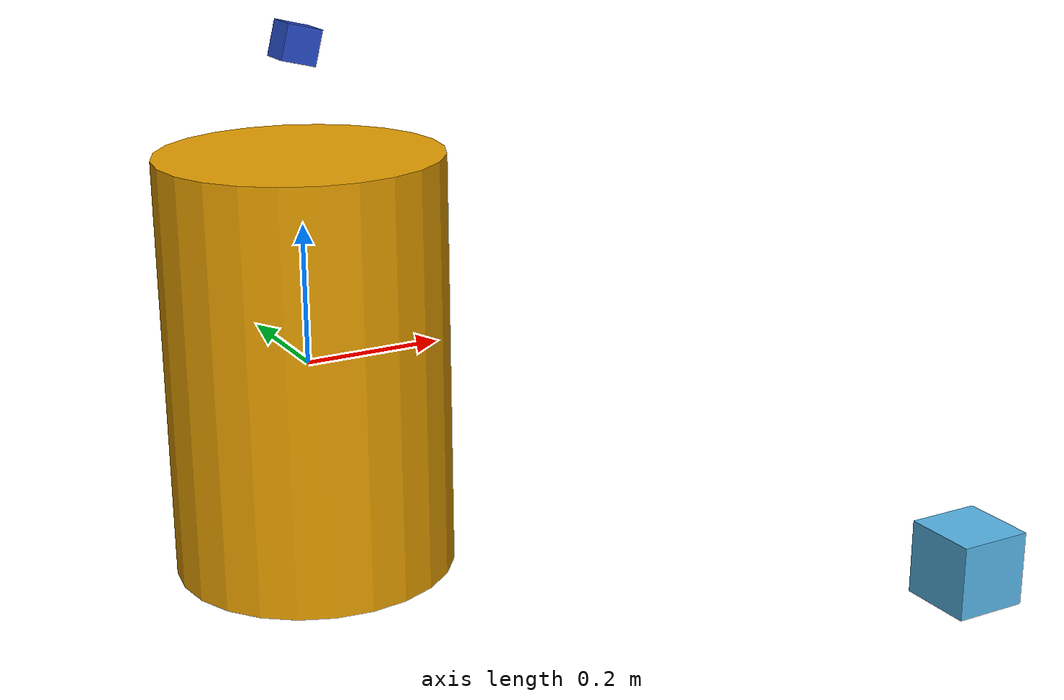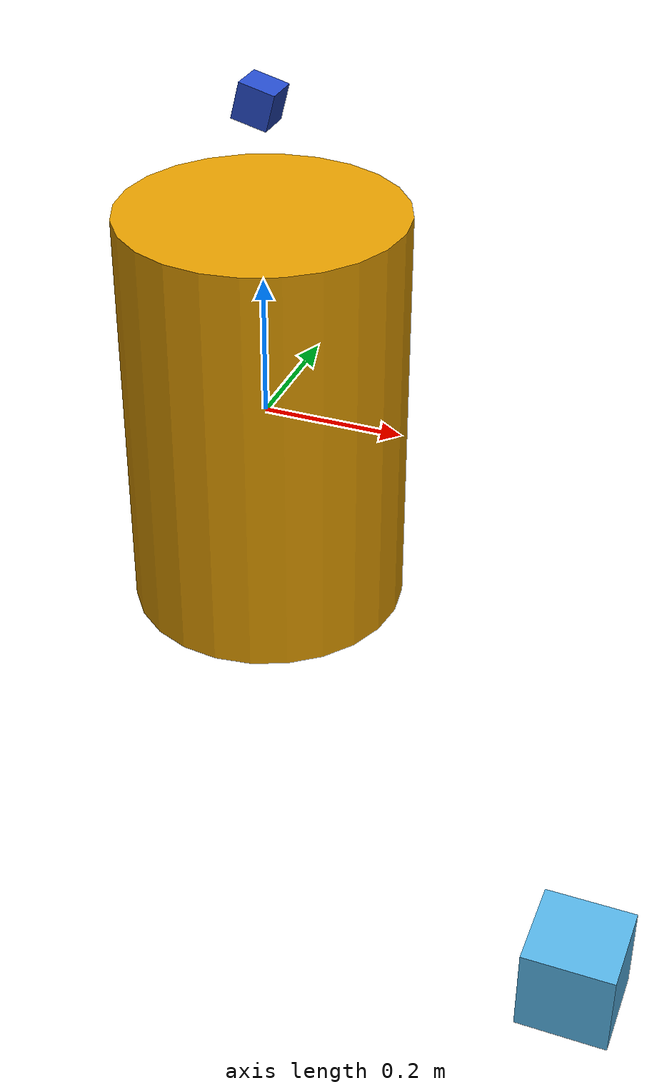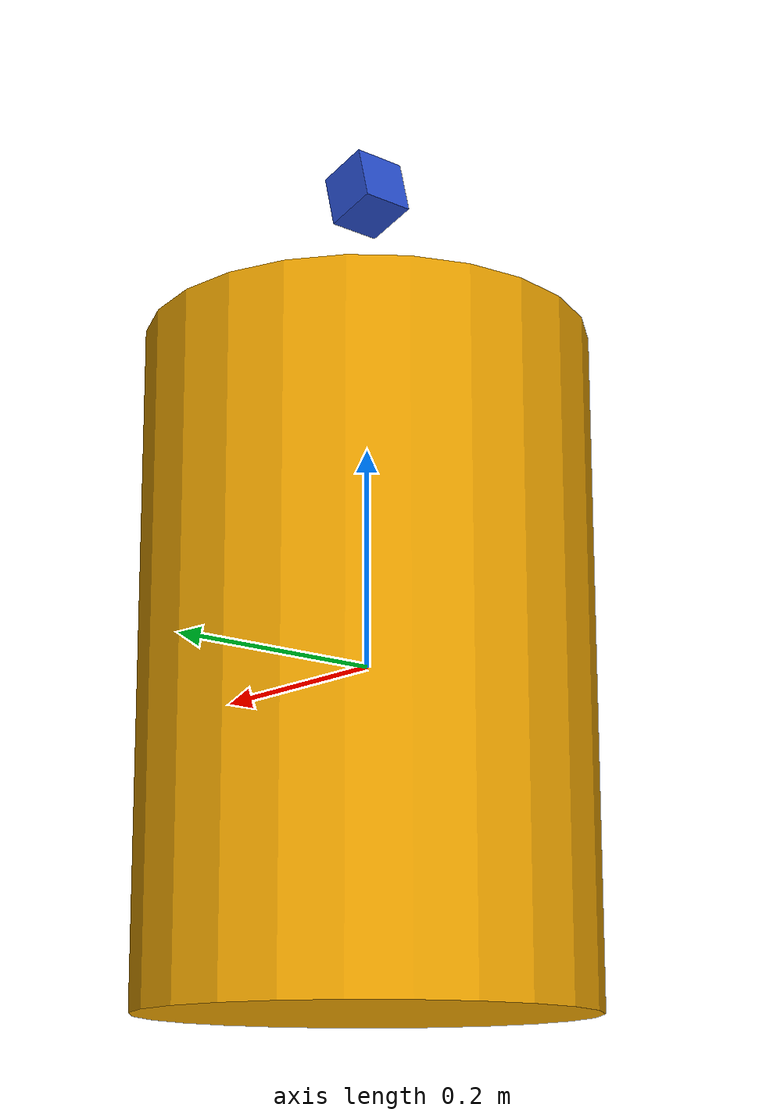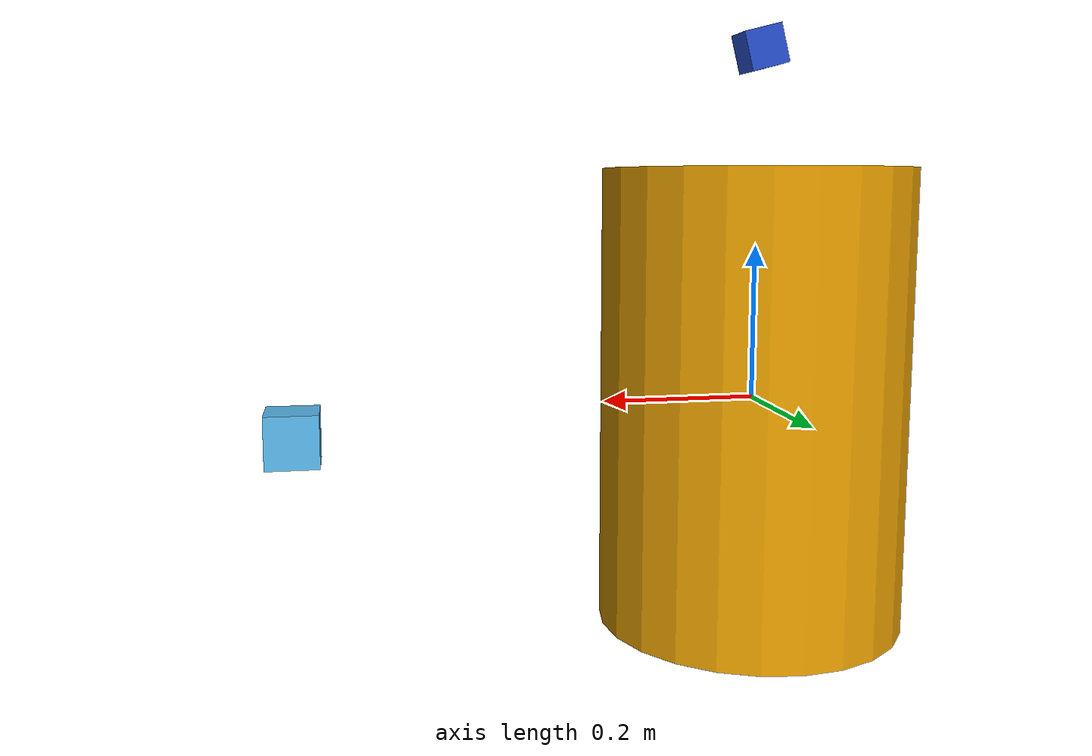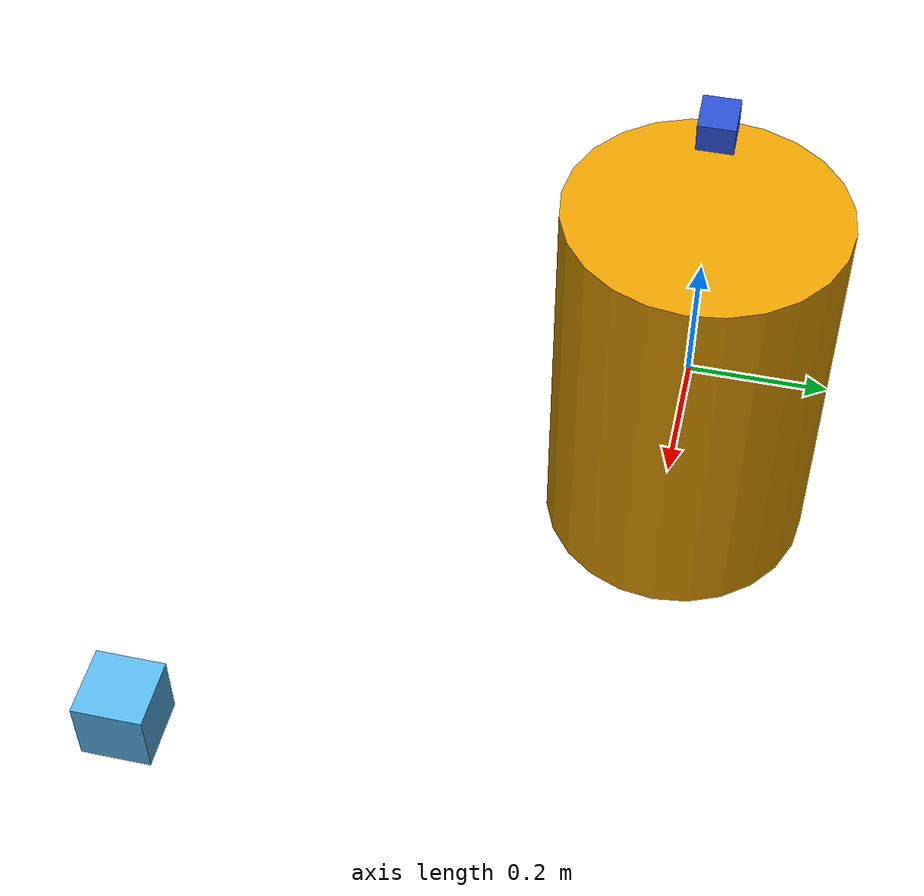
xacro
<?xml version="1.0"?>

<robot name="hermes" xmlns:xacro="http://www.ros.org/wiki/xacro">
<xacro:property name="M_PI" value="3.1415926535897931" />
<xacro:property name="M_PI2" value="-3.1415926535897931" />
 <material name="blue">
    <color rgba="0 0 0.8 1"/>
  </material>
  <material name="black">
    <color rgba="0 0 0 1"/>
  </material>

  <link name="base_link">
    <visual>
        <geometry>
      <cylinder length="0.6" radius="0.2"/>
     </geometry>
    </visual>
  </link>

  <link name="lidar_link">
    <collision>
      <origin xyz="0 -1 0" rpy="0 0 0" />
      <geometry>
        <box size="0.1 0.1 0.1" />
      </geometry>
    </collision>
    <visual>
      <origin xyz="0 -1 0" rpy="0 0 0" />
      <geometry>
        <box size="0.1 0.1 0.1" />
      </geometry>
    </visual>
    <inertial>
      <mass value="1e-5" />
      <origin xyz="0 1 0" rpy="0 0 0" />
      <inertia ixx="1e-6" ixy="0" ixz="0" iyy="1e-6" iyz="0" izz="1e-6" />
    </inertial>
  </link>
  <joint name="lidar_joint" type="fixed">
    <origin xyz="0.630975 0.330975 -0.1807467" rpy="0 0 0" />
    <parent link="base_link" />
    <child link="lidar_link" />
  </joint>

<gazebo reference="lidar_link">

<sensor type="ray" name="lidar_link">
          <pose>0 0 0 0 0 0</pose>
          <visualize>false</visualize>
          <update_rate>10</update_rate>
          <ray>
            <scan>
              <horizontal>
                <samples>1875</samples>
                <resolution>1</resolution>
                <min_angle>-3</min_angle>
                <max_angle>3</max_angle>
              </horizontal>
              <vertical>
                <samples>16</samples>
                <resolution>1</resolution>
                <min_angle>-0.25</min_angle>
                <max_angle>0.25</max_angle>
              </vertical>
            </scan>
            <range>
              <min>0.3</min>
              <max>131.0</max>
              <resolution>0.001</resolution>
            </range>
            <noise>
              <type>gaussian</type>
              <mean>0.0</mean>
              <stddev>0.0</stddev>
            </noise>
          </ray>
          <plugin name="gazebo_ros_laser_controller" filename="libgazebo_ros_velodyne_laser.so">
            <topicName>/velodyne</topicName>
            <frameName>lidar_link</frameName>
            <min_range>0.9</min_range>
            <max_range>130.0</max_range>
            <gaussianNoise>0.008</gaussianNoise>
          </plugin>
        </sensor>

      </gazebo>

        <!--CAMERA-->
      <link name="camera_link">
        <visual>
          <origin rpy="0 0 0" xyz="0 0 0" />
          <geometry>
            <box size="0.05 0.05 0.05" />
          </geometry>
          <material name="Blue" />
        </visual>
      </link>
      <joint name="camera_joint" type="fixed">
        <origin rpy="0 0.25 0" xyz="0.0 0 0.45" />
        <parent link="base_link" />
        <child link="camera_link" />
      </joint>

      <gazebo reference="camera_link">
        <sensor type="camera" name="camera1">
          <update_rate>30.0</update_rate>
          <camera name="head">
            <horizontal_fov>1.396</horizontal_fov>
            <image>
              <width>8000</width>
              <height>8000</height>
              <format>R8G8B8</format>
            </image>
            <clip>
              <near>0.02</near>
              <far>300</far>
            </clip>
            <noise>
              <type>gaussian</type>
              <mean>0.0</mean>
              <stddev>0.007</stddev>
            </noise>
          </camera>
          <plugin name="camera_controller" filename="libgazebo_ros_camera.so">
            <alwaysOn>true</alwaysOn>
            <updateRate>0.0</updateRate>
            <cameraName>/camera</cameraName>
            <imageTopicName>image_raw</imageTopicName>
            <cameraInfoTopicName>camera_info</cameraInfoTopicName>
            <frameName>camera_link</frameName>
            <hackBaseline>0.07</hackBaseline>
            <distortionK1>0.0</distortionK1>
            <distortionK2>0.0</distortionK2>
            <distortionK3>0.0</distortionK3>
            <distortionT1>0.0</distortionT1>
            <distortionT2>0.0</distortionT2>
          </plugin>
        </sensor>
      </gazebo>

</robot>
